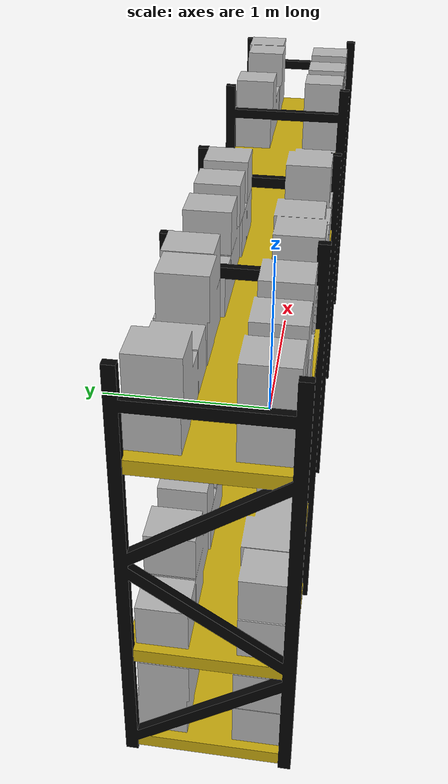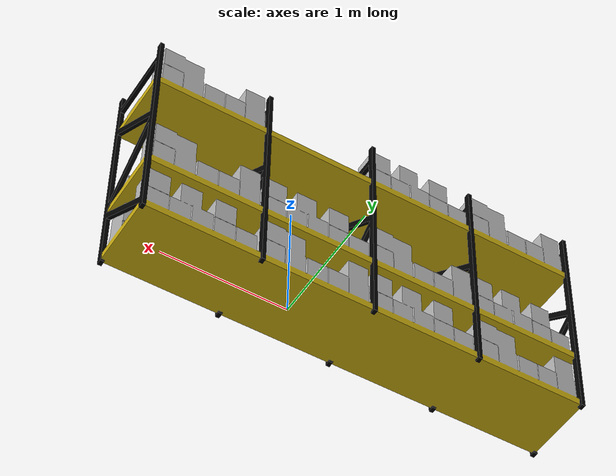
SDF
<?xml version='1.0'?>
<sdf version='1.7'>
  <model name='shelf_aruco'>
    <pose>0 0 0 0 0 0</pose>
    <self_collide>false</self_collide>
    <!-- BASE_LINK FRAME -->
    <link name='shelf_base'>
      <pose>-0.5 0 0 0 0 0</pose>
      <collision name='shelf_chassi_collision'>
        <pose>0 0 0.9 0 0 0</pose>
        <geometry>
          <box>
            <size>3.6 0.6 1.8</size>
          </box>
        </geometry>
      </collision>
      <visual name='shelf_chassi_visual'>
        <pose>0 0 0 0 0 0</pose>
        <geometry>
          <mesh>
            <scale>0.2 0.3 0.3</scale>
            <uri>meshes/shelf_big_movai.dae</uri>
          </mesh>
        </geometry>
      </visual>
    </link>
    <static>1</static>
  </model>
</sdf>
